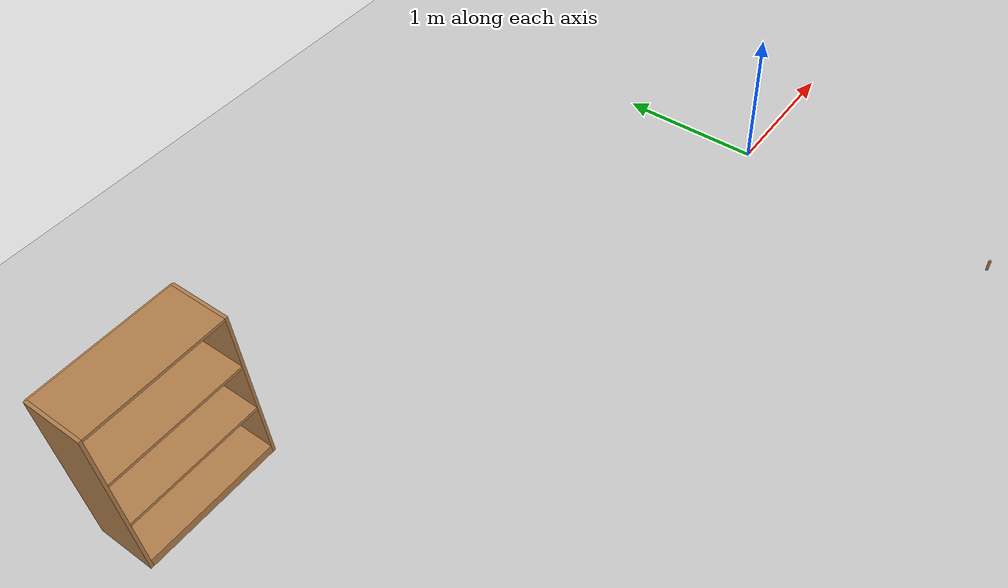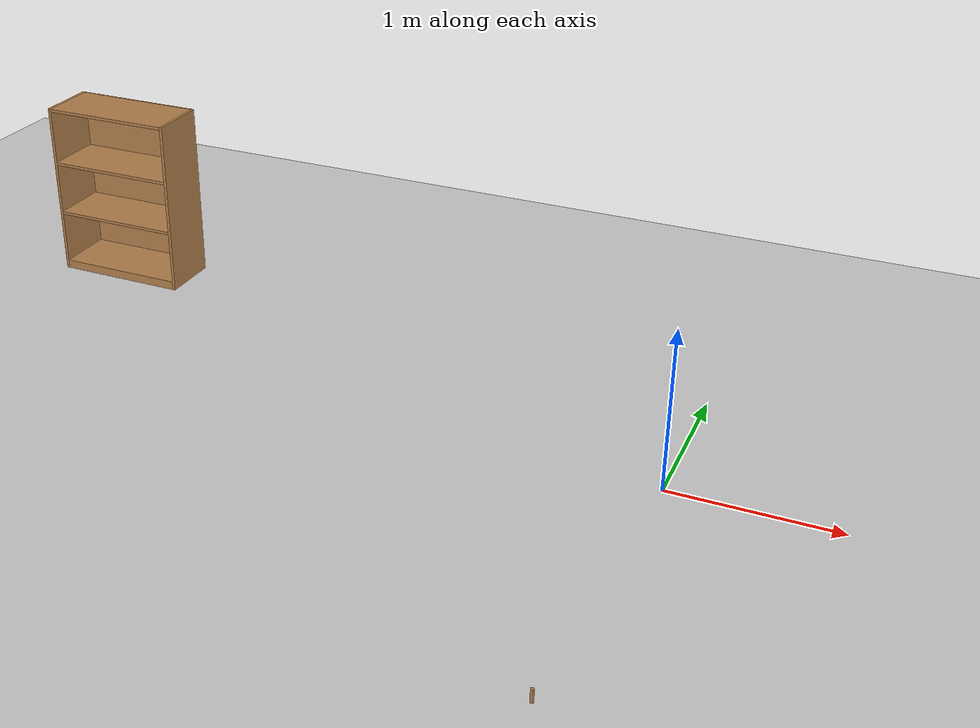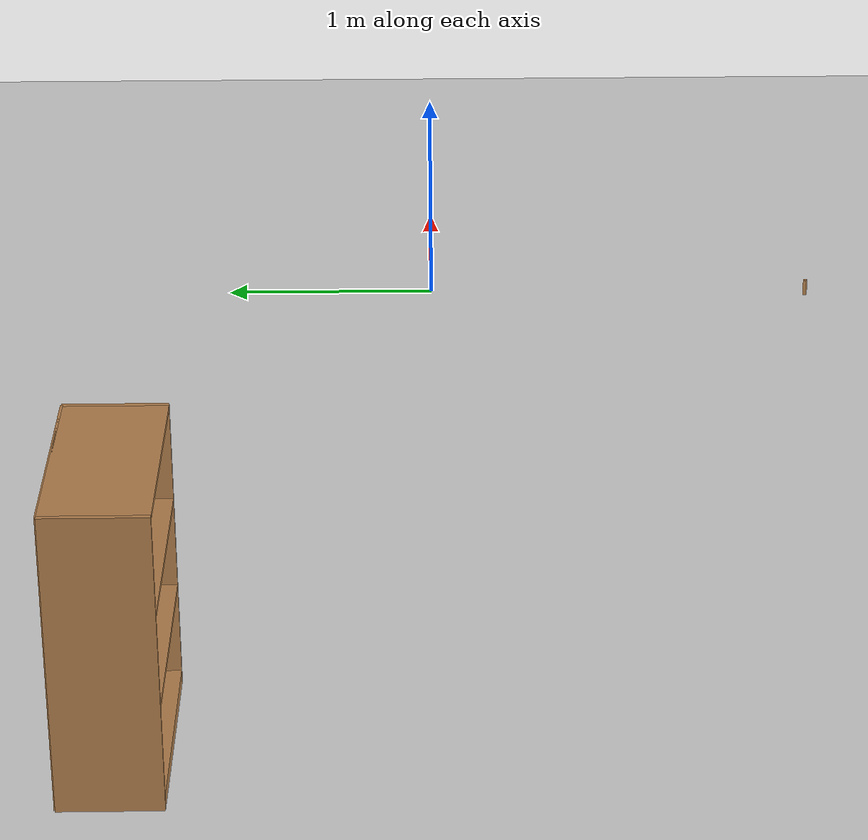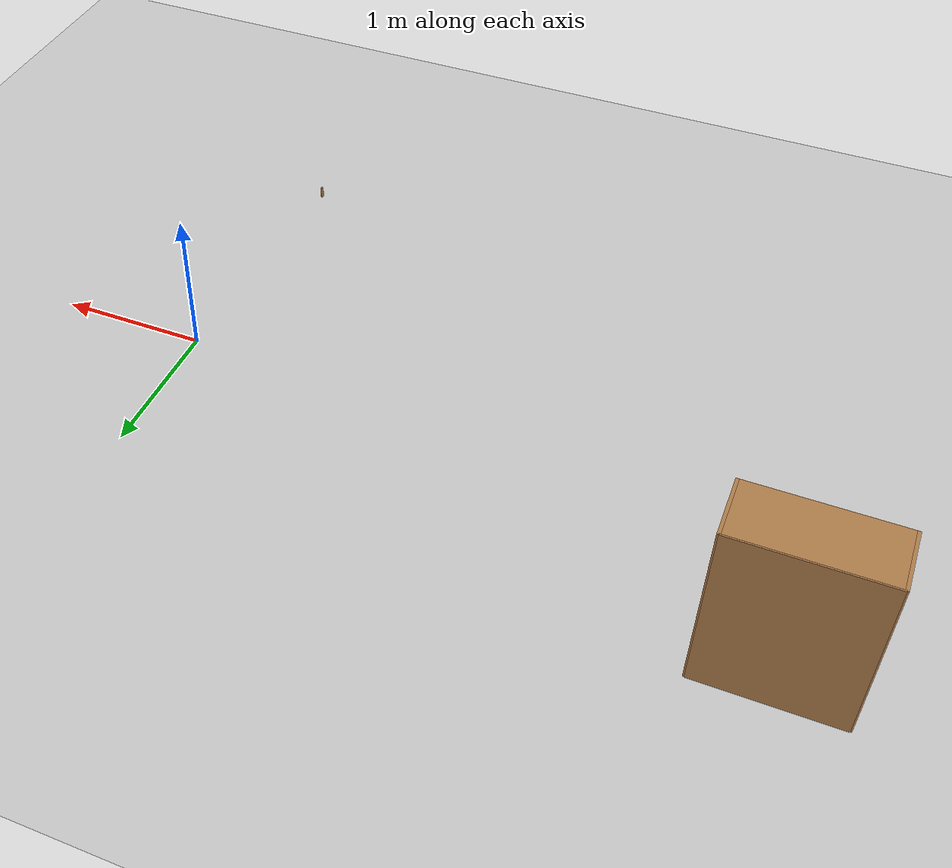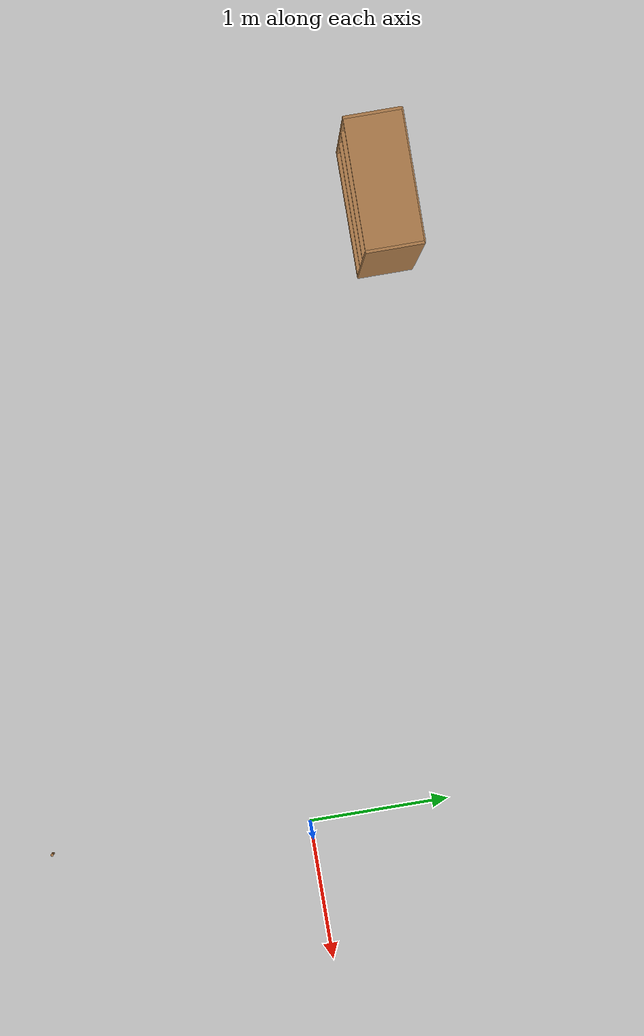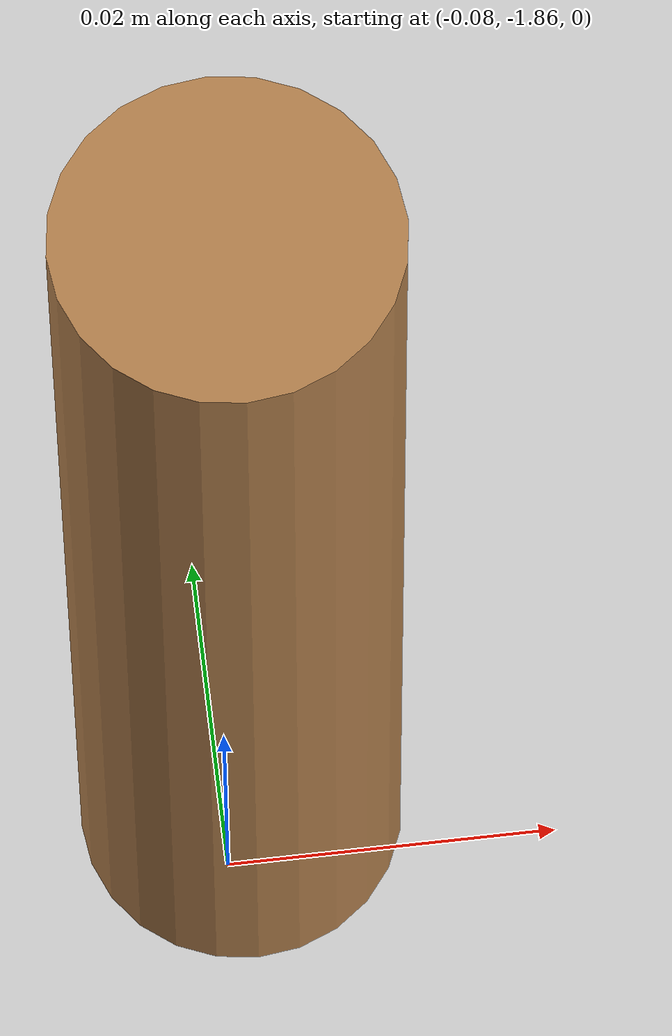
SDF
<sdf version="1.7">
 <world name="default">
  <light name="sun" type="directional">
   <pose>0 0 10 0 -0 0</pose>
   <diffuse>0.8 0.8 0.8 1</diffuse>
   <specular>0.2 0.2 0.2 1</specular>
   <attenuation>
    <range>1000</range>
    <constant>0.9</constant>
    <linear>0.01</linear>
    <quadratic>0.001</quadratic>
   </attenuation>
   <direction>-0.5 0.1 -0.9</direction>
   <spot><inner_angle>0</inner_angle><outer_angle>0</outer_angle><falloff>0</falloff></spot>
  </light>
  <model name="ground_plane">
   <static>1</static>
   <link name="link">
    <collision name="collision">
     <geometry><plane><normal>0 0 1</normal><size>100 100</size></plane></geometry>
     <surface>
      <contact><collide_bitmask>65535</collide_bitmask></contact>
      <friction><ode><mu>100</mu><mu2>50</mu2></ode></friction>
     </surface>
    </collision>
    <visual name="visual">
     <cast_shadows>0</cast_shadows>
     <geometry><plane><normal>0 0 1</normal><size>100 100</size></plane></geometry>
     <material>
      <script><uri>file://media/materials/scripts/gazebo.material</uri><name>Gazebo/Grey</name></script>
     </material>
    </visual>
   </link>
  </model>
  <gravity>0 0 -9.8</gravity>
  <magnetic_field>6e-06 2.3e-05 -4.2e-05</magnetic_field>
  <atmosphere type="adiabatic"/>
  <physics type="ode">
   <max_step_size>0.001</max_step_size>
   <real_time_factor>1</real_time_factor>
   <real_time_update_rate>1000</real_time_update_rate>
  </physics>
  <scene><ambient>0.4 0.4 0.4 1</ambient><background>0.7 0.7 0.7 1</background><shadows>1</shadows></scene>
  <audio><device>default</device></audio>
  <spherical_coordinates>
   <surface_model>EARTH_WGS84</surface_model>
   <latitude_deg>0</latitude_deg>
   <longitude_deg>0</longitude_deg>
   <elevation>0</elevation>
   <heading_deg>0</heading_deg>
  </spherical_coordinates>
  <model name="bookshelf">
   <static>1</static>
   <link name="link">
    <inertial><mass>1</mass></inertial>
    <collision name="back">
     <pose>0 0.005 0.6 0 -0 0</pose>
     <geometry><box><size>0.9 0.01 1.2</size></box></geometry>
    </collision>
    <visual name="visual1">
     <pose>0 0.005 0.6 0 -0 0</pose>
     <geometry><box><size>0.9 0.01 1.2</size></box></geometry>
     <material>
      <script><uri>file://media/materials/scripts/gazebo.material</uri><name>Gazebo/Wood</name></script>
     </material>
    </visual>
    <collision name="left_side">
     <pose>0.45 -0.195 0.6 0 -0 0</pose>
     <geometry><box><size>0.02 0.4 1.2</size></box></geometry>
    </collision>
    <visual name="visual2">
     <pose>0.45 -0.195 0.6 0 -0 0</pose>
     <geometry><box><size>0.02 0.4 1.2</size></box></geometry>
     <material>
      <script><uri>file://media/materials/scripts/gazebo.material</uri><name>Gazebo/Wood</name></script>
     </material>
    </visual>
    <collision name="right_side">
     <pose>-0.45 -0.195 0.6 0 -0 0</pose>
     <geometry><box><size>0.02 0.4 1.2</size></box></geometry>
    </collision>
    <visual name="visual3">
     <pose>-0.45 -0.195 0.6 0 -0 0</pose>
     <geometry><box><size>0.02 0.4 1.2</size></box></geometry>
     <material>
      <script><uri>file://media/materials/scripts/gazebo.material</uri><name>Gazebo/Wood</name></script>
     </material>
    </visual>
    <collision name="bottom">
     <pose>0 -0.195 0.03 0 -0 0</pose>
     <geometry><box><size>0.88 0.4 0.06</size></box></geometry>
    </collision>
    <visual name="visual4">
     <pose>0 -0.195 0.03 0 -0 0</pose>
     <geometry><box><size>0.88 0.4 0.06</size></box></geometry>
     <material>
      <script><uri>file://media/materials/scripts/gazebo.material</uri><name>Gazebo/Wood</name></script>
     </material>
    </visual>
    <collision name="top">
     <pose>0 -0.195 1.19 0 -0 0</pose>
     <geometry><box><size>0.88 0.4 0.02</size></box></geometry>
    </collision>
    <visual name="visual5">
     <pose>0 -0.195 1.19 0 -0 0</pose>
     <geometry><box><size>0.88 0.4 0.02</size></box></geometry>
     <material>
      <script><uri>file://media/materials/scripts/gazebo.material</uri><name>Gazebo/Wood</name></script>
     </material>
    </visual>
    <collision name="low_shelf">
     <pose>0 -0.195 0.43 0 -0 0</pose>
     <geometry><box><size>0.88 0.4 0.02</size></box></geometry>
    </collision>
    <visual name="visual6">
     <pose>0 -0.195 0.43 0 -0 0</pose>
     <geometry><box><size>0.88 0.4 0.02</size></box></geometry>
     <material>
      <script><uri>file://media/materials/scripts/gazebo.material</uri><name>Gazebo/Wood</name></script>
     </material>
    </visual>
    <collision name="high_shelf">
     <pose>0 -0.195 0.8 0 -0 0</pose>
     <geometry><box><size>0.88 0.4 0.02</size></box></geometry>
    </collision>
    <visual name="visual7">
     <pose>0 -0.195 0.8 0 -0 0</pose>
     <geometry><box><size>0.88 0.4 0.02</size></box></geometry>
     <material>
      <script><uri>file://media/materials/scripts/gazebo.material</uri><name>Gazebo/Wood</name></script>
     </material>
    </visual>
   </link>
   <pose>-4.24034 1.38204 0 0 -0 0</pose>
  </model>
  <model name="wooden_peg">
   <link name="link">
    <pose>0 0 0.04 0 -0 0</pose>
    <inertial>
     <mass>0.0175</mass>
     <inertia>
      <ixx>9.74923e-06</ixx>
      <ixy>0</ixy>
      <ixz>0</ixz>
      <iyy>9.74923e-06</iyy>
      <iyz>0</iyz>
      <izz>8.31797e-07</izz>
     </inertia>
    </inertial>
    <collision name="collision">
     <geometry><cylinder><radius>0.00975</radius><length>0.08</length></cylinder></geometry>
     <surface>
      <contact>
       <poissons_ratio>0.347</poissons_ratio>
       <elastic_modulus>8.8e+09</elastic_modulus>
       <ode><kp>100000</kp><kd>100</kd><max_vel>100</max_vel><min_depth>0.001</min_depth></ode>
      </contact>
      <friction>
       <torsional>
        <coefficient>1</coefficient>
        <use_patch_radius>0</use_patch_radius>
        <surface_radius>0.01</surface_radius>
       </torsional>
      </friction>
     </surface>
    </collision>
    <visual name="visual">
     <geometry><cylinder><radius>0.00975</radius><length>0.08</length></cylinder></geometry>
     <material>
      <script><uri>file://media/materials/scripts/gazebo.material</uri><name>Gazebo/Wood</name></script>
     </material>
    </visual>
   </link>
   <pose>-0.078777 -1.85641 -0.000689 5.4e-05 -6.1e-05 0</pose>
  </model>
 </world>
</sdf>
